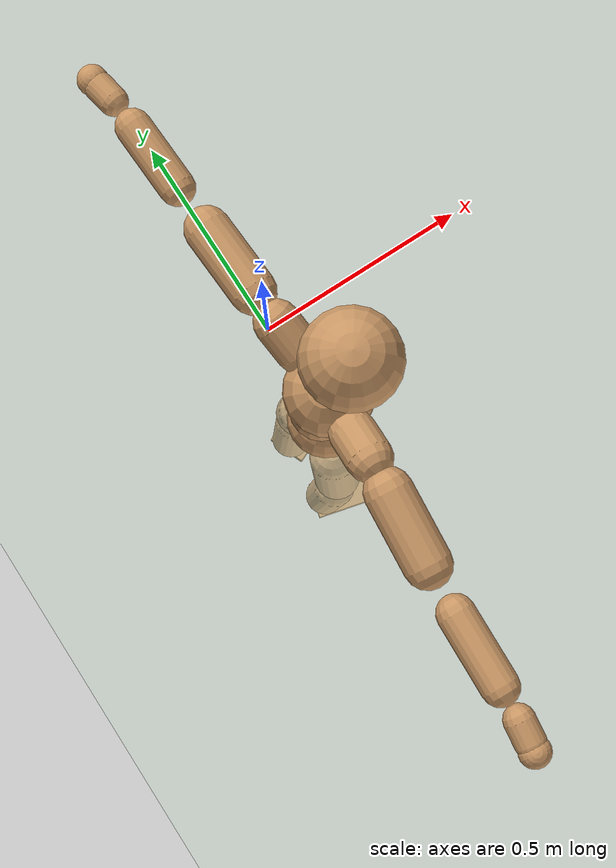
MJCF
<mujoco model="humanoid">
  <compiler coordinate="local" angle="radian"/>
  <default>
    <joint damping="0.0" armature="0.01" stiffness="0.0" limited="true"/>
    <geom conaffinity="1" condim="3" contype="7" margin="0.001" rgba="0.8 0.6 .4 1"/>
  </default>
  <asset>
    <texture type="skybox" builtin="gradient" rgb1=".4 .5 .6" rgb2="0 0 0" width="100" height="100"/>
    <texture builtin="flat" height="1278" mark="cross" markrgb="1 1 1" name="texgeom" random="0.01" rgb1="0.8 0.6 0.4" rgb2="0.8 0.6 0.4" type="cube" width="127"/>
    <texture builtin="checker" height="100" name="texplane" rgb1="0 0 0" rgb2="0.8 0.8 0.8" type="2d" width="100"/>
    <material name="MatPlane" reflectance="0.5" shininess="1" specular="1" texrepeat="60 60" texture="texplane"/>
    <material name="geom" texture="texgeom" texuniform="true"/>
  </asset>
  <worldbody>
    <light cutoff="100" diffuse="1 1 1" dir="-0 0 -1.3" directional="true" exponent="1" pos="0 0 1.3" specular=".1 .1 .1"/>
    <geom conaffinity="1" condim="3" name="floor" pos="0 0 0" rgba="0.8 0.9 0.8 1" size="100 100 .2" type="plane" material="MatPlane"/>
    <body name="Pelvis" pos="0.0009 -0.243 0.0074">
      <freejoint name="Pelvis"/>
      <geom type="sphere" contype="1" conaffinity="1" density="500" size="0.0901" pos="0.0000 0.0000 0.0000" name="Pelvis"/>
      <body name="L_Hip" pos="-0.0242 0.0545 -0.0839">
        <joint name="L_Hip_x" type="hinge" pos="0 0 0" axis="1 0 0" stiffness="800" damping="80" armature="0.02" range="-180.0000 180.0000"/>
        <joint name="L_Hip_y" type="hinge" pos="0 0 0" axis="0 1 0" stiffness="800" damping="80" armature="0.02" range="-180.0000 180.0000"/>
        <joint name="L_Hip_z" type="hinge" pos="0 0 0" axis="0 0 1" stiffness="800" damping="80" armature="0.02" range="-180.0000 180.0000"/>
        <geom type="capsule" contype="1" conaffinity="1" density="500" fromto="0.0013 0.0095 -0.0811 0.0052 0.0379 -0.3245" size="0.0566" name="L_Hip"/>
        <body name="L_Knee" pos="0.0065 0.0473 -0.4056">
          <joint name="L_Knee_x" type="hinge" pos="0 0 0" axis="1 0 0" stiffness="800" damping="80" armature="0.02" range="-180.0000 180.0000"/>
          <joint name="L_Knee_y" type="hinge" pos="0 0 0" axis="0 1 0" stiffness="800" damping="80" armature="0.02" range="-180.0000 180.0000"/>
          <joint name="L_Knee_z" type="hinge" pos="0 0 0" axis="0 0 1" stiffness="800" damping="80" armature="0.02" range="-180.0000 180.0000"/>
          <geom type="capsule" contype="1" conaffinity="1" density="500" fromto="-0.0072 -0.0025 -0.0851 -0.0290 -0.0100 -0.3405" size="0.0516" name="L_Knee"/>
          <body name="L_Ankle" pos="-0.0362 -0.0125 -0.4257">
            <joint name="L_Ankle_x" type="hinge" pos="0 0 0" axis="1 0 0" stiffness="800" damping="80" armature="0.02" range="-180.0000 180.0000"/>
            <joint name="L_Ankle_y" type="hinge" pos="0 0 0" axis="0 1 0" stiffness="800" damping="80" armature="0.02" range="-180.0000 180.0000"/>
            <joint name="L_Ankle_z" type="hinge" pos="0 0 0" axis="0 0 1" stiffness="800" damping="80" armature="0.02" range="-180.0000 180.0000"/>
            <geom type="box" contype="1" conaffinity="1" density="500" pos="0.0588 0.0242 -0.0304" size="0.0813 0.0533 0.0208" quat="0.9810 0.0000 0.0000 0.1940" name="L_Ankle"/>
            <body name="L_Toe" pos="0.1175 0.0484 -0.0607">
              <joint name="L_Toe_x" type="hinge" pos="0 0 0" axis="1 0 0" stiffness="500" damping="50" armature="0.02" range="-180.0000 180.0000"/>
              <joint name="L_Toe_y" type="hinge" pos="0 0 0" axis="0 1 0" stiffness="500" damping="50" armature="0.02" range="-180.0000 180.0000"/>
              <joint name="L_Toe_z" type="hinge" pos="0 0 0" axis="0 0 1" stiffness="500" damping="50" armature="0.02" range="-180.0000 180.0000"/>
              <geom type="box" contype="1" conaffinity="1" density="500" pos="0.0000 0.0000 0.0323" size="0.001 0.0025 0.0011" quat="0.9802 0.0000 0.0000 0.1981" name="L_Toe"/>
            </body>
          </body>
        </body>
      </body>
      <body name="R_Hip" pos="-0.0214 -0.057 -0.0924">
        <joint name="R_Hip_x" type="hinge" pos="0 0 0" axis="1 0 0" stiffness="800" damping="80" armature="0.02" range="-180.0000 180.0000"/>
        <joint name="R_Hip_y" type="hinge" pos="0 0 0" axis="0 1 0" stiffness="800" damping="80" armature="0.02" range="-180.0000 180.0000"/>
        <joint name="R_Hip_z" type="hinge" pos="0 0 0" axis="0 0 1" stiffness="800" damping="80" armature="0.02" range="-180.0000 180.0000"/>
        <geom type="capsule" contype="1" conaffinity="1" density="500" fromto="-0.0010 -0.0099 -0.0800 -0.0041 -0.0397 -0.3200" size="0.0562" name="R_Hip"/>
        <body name="R_Knee" pos="-0.0051 -0.0496 -0.4">
          <joint name="R_Knee_x" type="hinge" pos="0 0 0" axis="1 0 0" stiffness="800" damping="80" armature="0.02" range="-180.0000 180.0000"/>
          <joint name="R_Knee_y" type="hinge" pos="0 0 0" axis="0 1 0" stiffness="800" damping="80" armature="0.02" range="-180.0000 180.0000"/>
          <joint name="R_Knee_z" type="hinge" pos="0 0 0" axis="0 0 1" stiffness="800" damping="80" armature="0.02" range="-180.0000 180.0000"/>
          <geom type="capsule" contype="1" conaffinity="1" density="500" fromto="-0.0066 0.0036 -0.0841 -0.0264 0.0146 -0.3364" size="0.0523" name="R_Knee"/>
          <body name="R_Ankle" pos="-0.0329 0.0182 -0.4205">
            <joint name="R_Ankle_x" type="hinge" pos="0 0 0" axis="1 0 0" stiffness="800" damping="80" armature="0.02" range="-180.0000 180.0000"/>
            <joint name="R_Ankle_y" type="hinge" pos="0 0 0" axis="0 1 0" stiffness="800" damping="80" armature="0.02" range="-180.0000 180.0000"/>
            <joint name="R_Ankle_z" type="hinge" pos="0 0 0" axis="0 0 1" stiffness="800" damping="80" armature="0.02" range="-180.0000 180.0000"/>
            <geom type="box" contype="1" conaffinity="1" density="500" pos="0.0634 -0.0156 -0.0325" size="0.0886 0.0489 0.0222" quat="0.9927 0.0000 0.0000 -0.1202" name="R_Ankle"/>
            <body name="R_Toe" pos="0.1267 -0.0312 -0.0649">
              <joint name="R_Toe_x" type="hinge" pos="0 0 0" axis="1 0 0" stiffness="500" damping="50" armature="0.02" range="-180.0000 180.0000"/>
              <joint name="R_Toe_y" type="hinge" pos="0 0 0" axis="0 1 0" stiffness="500" damping="50" armature="0.02" range="-180.0000 180.0000"/>
              <joint name="R_Toe_z" type="hinge" pos="0 0 0" axis="0 0 1" stiffness="500" damping="50" armature="0.02" range="-180.0000 180.0000"/>
              <geom type="box" contype="1" conaffinity="1" density="500" pos="0.0000 0.0000 0.0346" size="0.001 0.0024 0.0012" quat="0.9938 0.0000 0.0000 -0.1111" name="R_Toe"/>
            </body>
          </body>
        </body>
      </body>
      <body name="Torso" pos="-0.0233 0.0044 0.125">
        <joint name="Torso_x" type="hinge" pos="0 0 0" axis="1 0 0" stiffness="1000" damping="100" armature="0.02" range="-180.0000 180.0000"/>
        <joint name="Torso_y" type="hinge" pos="0 0 0" axis="0 1 0" stiffness="1000" damping="100" armature="0.02" range="-180.0000 180.0000"/>
        <joint name="Torso_z" type="hinge" pos="0 0 0" axis="0 0 1" stiffness="1000" damping="100" armature="0.02" range="-180.0000 180.0000"/>
        <geom type="capsule" contype="1" conaffinity="1" density="500" fromto="0.0214 0.0028 0.0872 0.0143 0.0019 0.0581" size="0.0743" name="Torso"/>
        <body name="Spine" pos="0.0357 0.0047 0.1453">
          <joint name="Spine_x" type="hinge" pos="0 0 0" axis="1 0 0" stiffness="1000" damping="100" armature="0.02" range="-180.0000 180.0000"/>
          <joint name="Spine_y" type="hinge" pos="0 0 0" axis="0 1 0" stiffness="1000" damping="100" armature="0.02" range="-180.0000 180.0000"/>
          <joint name="Spine_z" type="hinge" pos="0 0 0" axis="0 0 1" stiffness="1000" damping="100" armature="0.02" range="-180.0000 180.0000"/>
          <geom type="capsule" contype="1" conaffinity="1" density="500" fromto="0.0010 -0.0019 0.0346 0.0006 -0.0012 0.0231" size="0.073" name="Spine"/>
          <body name="Chest" pos="0.0016 -0.0031 0.0577">
            <joint name="Chest_x" type="hinge" pos="0 0 0" axis="1 0 0" stiffness="1000" damping="100" armature="0.02" range="-180.0000 180.0000"/>
            <joint name="Chest_y" type="hinge" pos="0 0 0" axis="0 1 0" stiffness="1000" damping="100" armature="0.02" range="-180.0000 180.0000"/>
            <joint name="Chest_z" type="hinge" pos="0 0 0" axis="0 0 1" stiffness="1000" damping="100" armature="0.02" range="-180.0000 180.0000"/>
            <geom type="capsule" contype="1" conaffinity="1" density="500" fromto="-0.0135 -0.0054 0.0852 -0.0090 -0.0036 0.0568" size="0.0945" name="Chest"/>
            <body name="Neck" pos="-0.0249 -0.0131 0.2066">
              <joint name="Neck_x" type="hinge" pos="0 0 0" axis="1 0 0" stiffness="500" damping="50" armature="0.02" range="-180.0000 180.0000"/>
              <joint name="Neck_y" type="hinge" pos="0 0 0" axis="0 1 0" stiffness="500" damping="50" armature="0.02" range="-180.0000 180.0000"/>
              <joint name="Neck_z" type="hinge" pos="0 0 0" axis="0 0 1" stiffness="500" damping="50" armature="0.02" range="-180.0000 180.0000"/>
              <geom type="capsule" contype="1" conaffinity="1" density="500" fromto="0.0113 0.0017 0.0197 0.0451 0.0068 0.0789" size="0.0429" name="Neck"/>
              <body name="Head" pos="0.0564 0.0086 0.0987">
                <joint name="Head_x" type="hinge" pos="0 0 0" axis="1 0 0" stiffness="500" damping="50" armature="0.02" range="-180.0000 180.0000"/>
                <joint name="Head_y" type="hinge" pos="0 0 0" axis="0 1 0" stiffness="500" damping="50" armature="0.02" range="-180.0000 180.0000"/>
                <joint name="Head_z" type="hinge" pos="0 0 0" axis="0 0 1" stiffness="500" damping="50" armature="0.02" range="-180.0000 180.0000"/>
                <geom type="sphere" contype="1" conaffinity="1" density="500" size="0.1013" pos="0.0000 0.0000 0.0000" name="Head"/>
              </body>
            </body>
            <body name="L_Thorax" pos="-0.0206 0.0674 0.1095">
              <joint name="L_Thorax_x" type="hinge" pos="0 0 0" axis="1 0 0" stiffness="500" damping="50" armature="0.02" range="-180.0000 180.0000"/>
              <joint name="L_Thorax_y" type="hinge" pos="0 0 0" axis="0 1 0" stiffness="500" damping="50" armature="0.02" range="-180.0000 180.0000"/>
              <joint name="L_Thorax_z" type="hinge" pos="0 0 0" axis="0 0 1" stiffness="500" damping="50" armature="0.02" range="-180.0000 180.0000"/>
              <geom type="capsule" contype="1" conaffinity="1" density="500" fromto="-0.0030 0.0222 0.0091 -0.0121 0.0889 0.0364" size="0.0473" name="L_Thorax"/>
              <body name="L_Shoulder" pos="-0.0151 0.1111 0.0455">
                <joint name="L_Shoulder_x" type="hinge" pos="0 0 0" axis="1 0 0" stiffness="500" damping="50" armature="0.02" range="-720.0000 720.0000"/>
                <joint name="L_Shoulder_y" type="hinge" pos="0 0 0" axis="0 1 0" stiffness="500" damping="50" armature="0.02" range="-720.0000 720.0000"/>
                <joint name="L_Shoulder_z" type="hinge" pos="0 0 0" axis="0 0 1" stiffness="500" damping="50" armature="0.02" range="-720.0000 720.0000"/>
                <geom type="capsule" contype="1" conaffinity="1" density="500" fromto="-0.0027 0.0526 -0.0034 -0.0108 0.2103 -0.0135" size="0.0477" name="L_Shoulder"/>
                <body name="L_Elbow" pos="-0.0135 0.2629 -0.0168">
                  <joint name="L_Elbow_x" type="hinge" pos="0 0 0" axis="1 0 0" stiffness="500" damping="50" armature="0.02" range="-720.0000 720.0000"/>
                  <joint name="L_Elbow_y" type="hinge" pos="0 0 0" axis="0 1 0" stiffness="500" damping="50" armature="0.02" range="-720.0000 720.0000"/>
                  <joint name="L_Elbow_z" type="hinge" pos="0 0 0" axis="0 0 1" stiffness="500" damping="50" armature="0.02" range="-720.0000 720.0000"/>
                  <geom type="capsule" contype="1" conaffinity="1" density="500" fromto="-0.0025 0.0506 0.0018 -0.0100 0.2025 0.0073" size="0.0376" name="L_Elbow"/>
                  <body name="L_Wrist" pos="-0.0126 0.2531 0.0092">
                    <joint name="L_Wrist_x" type="hinge" pos="0 0 0" axis="1 0 0" stiffness="300" damping="30" armature="0.02" range="-180.0000 180.0000"/>
                    <joint name="L_Wrist_y" type="hinge" pos="0 0 0" axis="0 1 0" stiffness="300" damping="30" armature="0.02" range="-180.0000 180.0000"/>
                    <joint name="L_Wrist_z" type="hinge" pos="0 0 0" axis="0 0 1" stiffness="300" damping="30" armature="0.02" range="-180.0000 180.0000"/>
                    <geom type="capsule" contype="1" conaffinity="1" density="500" fromto="-0.0028 0.0156 -0.0019 -0.0113 0.0623 -0.0075" size="0.0308" name="L_Wrist"/>
                    <body name="L_Hand" pos="-0.0142 0.0779 -0.0093">
                      <joint name="L_Hand_x" type="hinge" pos="0 0 0" axis="1 0 0" stiffness="300" damping="30" armature="0.02" range="-180.0000 180.0000"/>
                      <joint name="L_Hand_y" type="hinge" pos="0 0 0" axis="0 1 0" stiffness="300" damping="30" armature="0.02" range="-180.0000 180.0000"/>
                      <joint name="L_Hand_z" type="hinge" pos="0 0 0" axis="0 0 1" stiffness="300" damping="30" armature="0.02" range="-180.0000 180.0000"/>
                      <geom type="sphere" contype="1" conaffinity="1" density="500" size="0.0321" pos="0.0000 0.0000 0.0000" name="L_Hand"/>
                    </body>
                  </body>
                </body>
              </body>
            </body>
            <body name="R_Thorax" pos="-0.0222 -0.0812 0.1099">
              <joint name="R_Thorax_x" type="hinge" pos="0 0 0" axis="1 0 0" stiffness="500" damping="50" armature="0.02" range="-180.0000 180.0000"/>
              <joint name="R_Thorax_y" type="hinge" pos="0 0 0" axis="0 1 0" stiffness="500" damping="50" armature="0.02" range="-180.0000 180.0000"/>
              <joint name="R_Thorax_z" type="hinge" pos="0 0 0" axis="0 0 1" stiffness="500" damping="50" armature="0.02" range="-180.0000 180.0000"/>
              <geom type="capsule" contype="1" conaffinity="1" density="500" fromto="-0.0009 -0.0211 0.0093 -0.0037 -0.0844 0.0372" size="0.0483" name="R_Thorax"/>
              <body name="R_Shoulder" pos="-0.0046 -0.1055 0.0465">
                <joint name="R_Shoulder_x" type="hinge" pos="0 0 0" axis="1 0 0" stiffness="500" damping="50" armature="0.02" range="-720.0000 720.0000"/>
                <joint name="R_Shoulder_y" type="hinge" pos="0 0 0" axis="0 1 0" stiffness="500" damping="50" armature="0.02" range="-720.0000 720.0000"/>
                <joint name="R_Shoulder_z" type="hinge" pos="0 0 0" axis="0 0 1" stiffness="500" damping="50" armature="0.02" range="-720.0000 720.0000"/>
                <geom type="capsule" contype="1" conaffinity="1" density="500" fromto="-0.0041 -0.0526 -0.0037 -0.0163 -0.2104 -0.0148" size="0.0499" name="R_Shoulder"/>
                <body name="R_Elbow" pos="-0.0204 -0.263 -0.0185">
                  <joint name="R_Elbow_x" type="hinge" pos="0 0 0" axis="1 0 0" stiffness="500" damping="50" armature="0.02" range="-720.0000 720.0000"/>
                  <joint name="R_Elbow_y" type="hinge" pos="0 0 0" axis="0 1 0" stiffness="500" damping="50" armature="0.02" range="-720.0000 720.0000"/>
                  <joint name="R_Elbow_z" type="hinge" pos="0 0 0" axis="0 0 1" stiffness="500" damping="50" armature="0.02" range="-720.0000 720.0000"/>
                  <geom type="capsule" contype="1" conaffinity="1" density="500" fromto="-0.0019 -0.0532 0.0023 -0.0076 -0.2129 0.0092" size="0.0393" name="R_Elbow"/>
                  <body name="R_Wrist" pos="-0.0095 -0.2661 0.0115">
                    <joint name="R_Wrist_x" type="hinge" pos="0 0 0" axis="1 0 0" stiffness="300" damping="30" armature="0.02" range="-180.0000 180.0000"/>
                    <joint name="R_Wrist_y" type="hinge" pos="0 0 0" axis="0 1 0" stiffness="300" damping="30" armature="0.02" range="-180.0000 180.0000"/>
                    <joint name="R_Wrist_z" type="hinge" pos="0 0 0" axis="0 0 1" stiffness="300" damping="30" armature="0.02" range="-180.0000 180.0000"/>
                    <geom type="capsule" contype="1" conaffinity="1" density="500" fromto="-0.0019 -0.0164 -0.0015 -0.0075 -0.0656 -0.0061" size="0.0322" name="R_Wrist"/>
                    <body name="R_Hand" pos="-0.0093 -0.082 -0.0076">
                      <joint name="R_Hand_x" type="hinge" pos="0 0 0" axis="1 0 0" stiffness="300" damping="30" armature="0.02" range="-180.0000 180.0000"/>
                      <joint name="R_Hand_y" type="hinge" pos="0 0 0" axis="0 1 0" stiffness="300" damping="30" armature="0.02" range="-180.0000 180.0000"/>
                      <joint name="R_Hand_z" type="hinge" pos="0 0 0" axis="0 0 1" stiffness="300" damping="30" armature="0.02" range="-180.0000 180.0000"/>
                      <geom type="sphere" contype="1" conaffinity="1" density="500" size="0.0334" pos="0.0000 0.0000 0.0000" name="R_Hand"/>
                    </body>
                  </body>
                </body>
              </body>
            </body>
          </body>
        </body>
      </body>
    </body>
  </worldbody>
  <actuator>
    <motor name="L_Hip_x" joint="L_Hip_x" gear="500"/>
    <motor name="L_Hip_y" joint="L_Hip_y" gear="500"/>
    <motor name="L_Hip_z" joint="L_Hip_z" gear="500"/>
    <motor name="L_Knee_x" joint="L_Knee_x" gear="500"/>
    <motor name="L_Knee_y" joint="L_Knee_y" gear="500"/>
    <motor name="L_Knee_z" joint="L_Knee_z" gear="500"/>
    <motor name="L_Ankle_x" joint="L_Ankle_x" gear="500"/>
    <motor name="L_Ankle_y" joint="L_Ankle_y" gear="500"/>
    <motor name="L_Ankle_z" joint="L_Ankle_z" gear="500"/>
    <motor name="L_Toe_x" joint="L_Toe_x" gear="500"/>
    <motor name="L_Toe_y" joint="L_Toe_y" gear="500"/>
    <motor name="L_Toe_z" joint="L_Toe_z" gear="500"/>
    <motor name="R_Hip_x" joint="R_Hip_x" gear="500"/>
    <motor name="R_Hip_y" joint="R_Hip_y" gear="500"/>
    <motor name="R_Hip_z" joint="R_Hip_z" gear="500"/>
    <motor name="R_Knee_x" joint="R_Knee_x" gear="500"/>
    <motor name="R_Knee_y" joint="R_Knee_y" gear="500"/>
    <motor name="R_Knee_z" joint="R_Knee_z" gear="500"/>
    <motor name="R_Ankle_x" joint="R_Ankle_x" gear="500"/>
    <motor name="R_Ankle_y" joint="R_Ankle_y" gear="500"/>
    <motor name="R_Ankle_z" joint="R_Ankle_z" gear="500"/>
    <motor name="R_Toe_x" joint="R_Toe_x" gear="500"/>
    <motor name="R_Toe_y" joint="R_Toe_y" gear="500"/>
    <motor name="R_Toe_z" joint="R_Toe_z" gear="500"/>
    <motor name="Torso_x" joint="Torso_x" gear="500"/>
    <motor name="Torso_y" joint="Torso_y" gear="500"/>
    <motor name="Torso_z" joint="Torso_z" gear="500"/>
    <motor name="Spine_x" joint="Spine_x" gear="500"/>
    <motor name="Spine_y" joint="Spine_y" gear="500"/>
    <motor name="Spine_z" joint="Spine_z" gear="500"/>
    <motor name="Chest_x" joint="Chest_x" gear="500"/>
    <motor name="Chest_y" joint="Chest_y" gear="500"/>
    <motor name="Chest_z" joint="Chest_z" gear="500"/>
    <motor name="Neck_x" joint="Neck_x" gear="500"/>
    <motor name="Neck_y" joint="Neck_y" gear="500"/>
    <motor name="Neck_z" joint="Neck_z" gear="500"/>
    <motor name="Head_x" joint="Head_x" gear="500"/>
    <motor name="Head_y" joint="Head_y" gear="500"/>
    <motor name="Head_z" joint="Head_z" gear="500"/>
    <motor name="L_Thorax_x" joint="L_Thorax_x" gear="500"/>
    <motor name="L_Thorax_y" joint="L_Thorax_y" gear="500"/>
    <motor name="L_Thorax_z" joint="L_Thorax_z" gear="500"/>
    <motor name="L_Shoulder_x" joint="L_Shoulder_x" gear="500"/>
    <motor name="L_Shoulder_y" joint="L_Shoulder_y" gear="500"/>
    <motor name="L_Shoulder_z" joint="L_Shoulder_z" gear="500"/>
    <motor name="L_Elbow_x" joint="L_Elbow_x" gear="500"/>
    <motor name="L_Elbow_y" joint="L_Elbow_y" gear="500"/>
    <motor name="L_Elbow_z" joint="L_Elbow_z" gear="500"/>
    <motor name="L_Wrist_x" joint="L_Wrist_x" gear="500"/>
    <motor name="L_Wrist_y" joint="L_Wrist_y" gear="500"/>
    <motor name="L_Wrist_z" joint="L_Wrist_z" gear="500"/>
    <motor name="L_Hand_x" joint="L_Hand_x" gear="500"/>
    <motor name="L_Hand_y" joint="L_Hand_y" gear="500"/>
    <motor name="L_Hand_z" joint="L_Hand_z" gear="500"/>
    <motor name="R_Thorax_x" joint="R_Thorax_x" gear="500"/>
    <motor name="R_Thorax_y" joint="R_Thorax_y" gear="500"/>
    <motor name="R_Thorax_z" joint="R_Thorax_z" gear="500"/>
    <motor name="R_Shoulder_x" joint="R_Shoulder_x" gear="500"/>
    <motor name="R_Shoulder_y" joint="R_Shoulder_y" gear="500"/>
    <motor name="R_Shoulder_z" joint="R_Shoulder_z" gear="500"/>
    <motor name="R_Elbow_x" joint="R_Elbow_x" gear="500"/>
    <motor name="R_Elbow_y" joint="R_Elbow_y" gear="500"/>
    <motor name="R_Elbow_z" joint="R_Elbow_z" gear="500"/>
    <motor name="R_Wrist_x" joint="R_Wrist_x" gear="500"/>
    <motor name="R_Wrist_y" joint="R_Wrist_y" gear="500"/>
    <motor name="R_Wrist_z" joint="R_Wrist_z" gear="500"/>
    <motor name="R_Hand_x" joint="R_Hand_x" gear="500"/>
    <motor name="R_Hand_y" joint="R_Hand_y" gear="500"/>
    <motor name="R_Hand_z" joint="R_Hand_z" gear="500"/>
  </actuator>
  <contact>
    <exclude body1="Torso" body2="Chest"/>
    <exclude body1="Head" body2="Chest"/>
    <exclude body1="R_Knee" body2="R_Toe"/>
    <exclude body1="R_Knee" body2="L_Ankle"/>
    <exclude body1="R_Knee" body2="L_Toe"/>
    <exclude body1="L_Knee" body2="L_Toe"/>
    <exclude body1="L_Knee" body2="R_Ankle"/>
    <exclude body1="L_Knee" body2="R_Toe"/>
    <exclude body1="L_Shoulder" body2="Chest"/>
    <exclude body1="R_Shoulder" body2="Chest"/>
  </contact>
  <sensor/>
  <size njmax="700" nconmax="700"/>
</mujoco>
